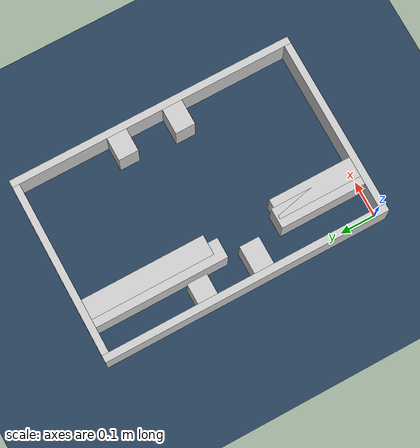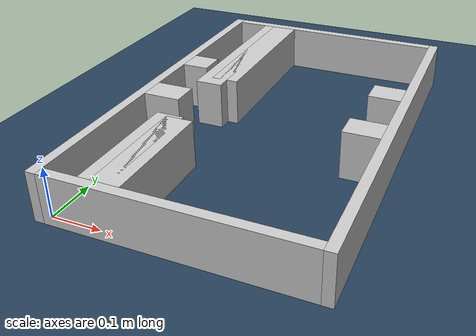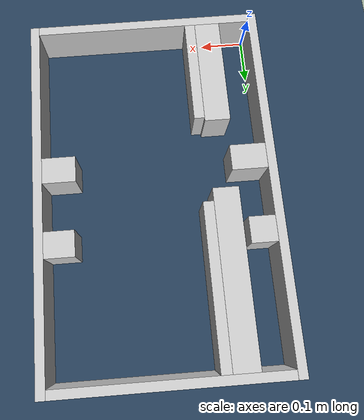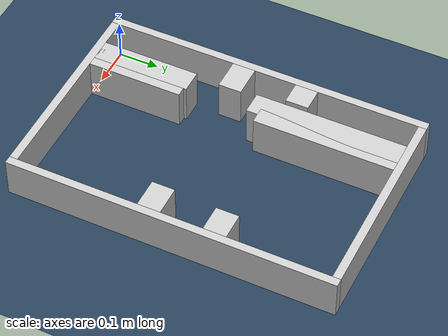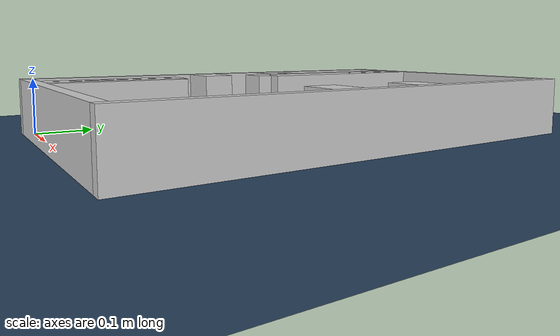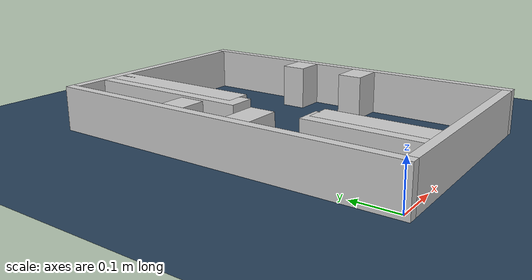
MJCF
<?xml version="1.0" ?>
<mujoco model="generated_real_template">
  <compiler angle="degree"/>
  <option timestep="0.002" integrator="implicitfast" iterations="100" cone="elliptic"/>
  <default>
    <geom density="1"/>
  </default>
  <asset>
    <texture builtin="gradient" height="3072" rgb1="0.3 0.5 0.7" rgb2="0 0 0" type="skybox" width="512"/>
    <texture builtin="checker" height="300" mark="edge" markrgb="0.8 0.8 0.8" name="groundplane" rgb1="0.2 0.3 0.4" rgb2="0.1 0.2 0.3" type="2d" width="300"/>
    <material name="groundplane" reflectance="0.2" texrepeat="5 5" texture="groundplane" texuniform="true"/>
  </asset>
  <worldbody>
    <light dir="0 0 -1" directional="true" pos="0 0 1.5"/>
    <geom name="floor" type="plane" condim="4" friction="0.5 0.005 0.001" material="groundplane" size="0 0 0.05"/>
    <body name="walls">
      <geom name="wall_boundary_left" type="box" condim="4" friction="1.0 0.005 0.0001" rgba="0.8 0.8 0.8 1" pos="-0.010000 0.387500 0.050000" euler="0 0 0.000000" size="0.010000 0.407500 0.050000"/>
      <geom name="wall_boundary_right" type="box" condim="4" friction="1.0 0.005 0.0001" rgba="0.8 0.8 0.8 1" pos="0.500000 0.387500 0.050000" euler="0 0 0.000000" size="0.010000 0.407500 0.050000"/>
      <geom name="wall_boundary_bottom" type="box" condim="4" friction="1.0 0.005 0.0001" rgba="0.8 0.8 0.8 1" pos="0.245000 -0.010000 0.050000" euler="0 0 0.000000" size="0.245000 0.010000 0.050000"/>
      <geom name="wall_boundary_top" type="box" condim="4" friction="1.0 0.005 0.0001" rgba="0.8 0.8 0.8 1" pos="0.245000 0.785000 0.050000" euler="0 0 0.000000" size="0.245000 0.010000 0.050000"/>
      <geom name="wall_inner_1_1" type="box" condim="4" friction="1.0 0.005 0.0001" rgba="0.8 0.8 0.8 1" pos="0.120884 0.117875 0.050000" euler="0 0 90.000000" size="0.117875 0.028500 0.050000"/>
      <geom name="wall_inner_1_2" type="box" condim="4" friction="1.0 0.005 0.0001" rgba="0.8 0.8 0.8 1" pos="0.120884 0.600833 0.050000" euler="0 0 90.000000" size="0.174167 0.028500 0.050000"/>
      <geom name="wall_inner_2_1" type="box" condim="4" friction="1.0 0.005 0.0001" rgba="0.8 0.8 0.8 1" pos="0.097525 0.121438 0.050000" euler="0 0 90.000000" size="0.121438 0.028500 0.050000"/>
      <geom name="wall_inner_2_2" type="box" condim="4" friction="1.0 0.005 0.0001" rgba="0.8 0.8 0.8 1" pos="0.097525 0.586668 0.050000" euler="0 0 90.000000" size="0.188332 0.028500 0.050000"/>
      <geom name="wall_inner_3_1" type="box" condim="4" friction="1.0 0.005 0.0001" rgba="0.8 0.8 0.8 1" pos="0.028625 0.494685 0.050000" euler="0 0 0.000000" size="0.028625 0.028500 0.050000"/>
      <geom name="wall_inner_3_2" type="box" condim="4" friction="1.0 0.005 0.0001" rgba="0.8 0.8 0.8 1" pos="0.456853 0.494685 0.050000" euler="0 0 0.000000" size="0.033147 0.028500 0.050000"/>
      <geom name="wall_inner_4_1" type="box" condim="4" friction="1.0 0.005 0.0001" rgba="0.8 0.8 0.8 1" pos="0.039269 0.332810 0.050000" euler="0 0 0.000000" size="0.039269 0.028500 0.050000"/>
      <geom name="wall_inner_4_2" type="box" condim="4" friction="1.0 0.005 0.0001" rgba="0.8 0.8 0.8 1" pos="0.453416 0.332810 0.050000" euler="0 0 0.000000" size="0.036584 0.028500 0.050000"/>
    </body>
  </worldbody>
</mujoco>
